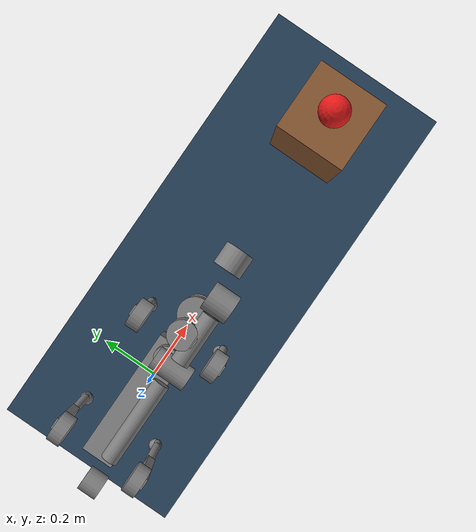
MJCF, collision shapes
<mujoco model="go2_d1_d1mesh scene">
  <include file="go2_d1_d1mesh.xml"/>

  <statistic center="0 0 0.1" extent="0.8"/>

  <visual>
    <headlight diffuse="0.6 0.6 0.6" ambient="0.3 0.3 0.3" specular="0 0 0"/>
    <rgba haze="0.15 0.25 0.35 1"/>
    <global azimuth="-130" elevation="-20"/>
  </visual>

  <asset>
    <texture type="skybox" builtin="gradient" rgb1="0.3 0.5 0.7" rgb2="0 0 0" width="512" height="3072"/>
    <texture type="2d" name="groundplane" builtin="checker" mark="edge" rgb1="0.2 0.3 0.4" rgb2="0.1 0.2 0.3"
      markrgb="0.8 0.8 0.8" width="300" height="300"/>
    <material name="groundplane" texture="groundplane" texuniform="true" texrepeat="5 5" reflectance="0.2"/>
    <material name="red" rgba="0.9 0.1 0.1 1" reflectance="0.3"/>
  </asset>

  <worldbody>
    <light pos="0 0 1.5" dir="0 0 -1" directional="true"/>
    <geom name="floor" size="0 0 0.05" type="plane" material="groundplane"/>
    <body name="table" pos="1.0 0 0.15">
      <geom name="table_top" type="box" size="0.12 0.12 0.15" rgba="0.55 0.35 0.2 1" condim="3"/>
    </body>
    <body name="red_ball" pos="1.0 0 0.355">
      <freejoint/>
      <geom name="ball" type="sphere" size="0.05" mass="0.05" material="red"
        friction="1.0 0.02 0.01" condim="3"/>
    </body>
  </worldbody>
</mujoco>

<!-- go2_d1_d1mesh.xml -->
<mujoco model="go2_d1_d1mesh">
  <compiler angle="radian" meshdir="assets" autolimits="true" />

  <option cone="elliptic" impratio="10" integrator="implicitfast" timestep="0.002" />

  <default>
    <default class="go2">
      <geom friction="0.4" margin="0.001" condim="1"/>
      <joint axis="0 1 0" damping="2" armature="0.05" frictionloss="0.2"/>
      <motor ctrlrange="-23.7 23.7"/>
      <default class="abduction">
        <joint axis="1 0 0" range="-1.0472 1.0472"/>
      </default>
      <default class="hip">
        <default class="front_hip">
          <joint range="-1.5708 3.4907"/>
        </default>
        <default class="back_hip">
          <joint range="-0.5236 4.5379"/>
        </default>
      </default>
      <default class="knee">
        <joint range="-2.7227 -0.83776"/>
        <motor ctrlrange="-45.43 45.43"/>
      </default>
      <default class="visual">
        <geom type="mesh" contype="0" conaffinity="0" group="2"/>
      </default>
      <default class="collision">
        <geom group="3"/>
        <default class="foot">
          <geom size="0.022" pos="-0.002 0 -0.213" priority="1" condim="6"
            friction="0.55 0.025 0.012"/>
        </default>
      </default>
    </default>

    <default class="d1">
      <joint damping="1" frictionloss="1"/>
      <general biastype="affine" gainprm="1000" biasprm="0 -1000 -100" forcerange="-30 30"/>
      <default class="d1_visual">
        <geom type="mesh" group="2" contype="0" conaffinity="0"/>
      </default>
      <default class="d1_collision">
        <geom type="cylinder" group="3" mass="0" density="0"/>
      </default>
    </default>
  </default>

  <asset>
    <material name="metal" rgba=".9 .95 .95 1" />
    <material name="black" rgba="0 0 0 1" />
    <material name="white" rgba="1 1 1 1" />
    <material name="gray" rgba="0.671705 0.692426 0.774270 1" />

    <mesh file="base_0.obj" />
    <mesh file="base_1.obj" />
    <mesh file="base_2.obj" />
    <mesh file="base_3.obj" />
    <mesh file="base_4.obj" />
    <mesh file="hip_0.obj" />
    <mesh file="hip_1.obj" />
    <mesh file="thigh_0.obj" />
    <mesh file="thigh_1.obj" />
    <mesh file="thigh_mirror_0.obj" />
    <mesh file="thigh_mirror_1.obj" />
    <mesh file="calf_0.obj" />
    <mesh file="calf_1.obj" />
    <mesh file="calf_mirror_0.obj" />
    <mesh file="calf_mirror_1.obj" />
    <mesh file="foot.obj" />

    <mesh name="d1_base_link" file="/home/lab/Documents/Unitree_Simulator/d1_550_description/meshes/base_link.STL" />
    <mesh name="d1_Empty_Link1" file="/home/lab/Documents/Unitree_Simulator/d1_550_description/meshes/Empty_Link1.STL" />
    <mesh name="d1_Empty_Link2" file="/home/lab/Documents/Unitree_Simulator/d1_550_description/meshes/Empty_Link2.STL" />
    <mesh name="d1_Empty_Link3" file="/home/lab/Documents/Unitree_Simulator/d1_550_description/meshes/Empty_Link3.STL" />
    <mesh name="d1_Empty_Link4" file="/home/lab/Documents/Unitree_Simulator/d1_550_description/meshes/Empty_Link4.STL" />
    <mesh name="d1_Empty_Link5" file="/home/lab/Documents/Unitree_Simulator/d1_550_description/meshes/Empty_Link5.STL" />
    <mesh name="d1_Empty_Link6" file="/home/lab/Documents/Unitree_Simulator/d1_550_description/meshes/Empty_Link6.STL" />
  </asset>

  <worldbody>
    <body name="base_link" pos="0 0 0.445" childclass="go2">
      <!-- COM torso: ~15 mm indietro (−x), allineato a go2_d1.xml -->
      <inertial pos="0.006112 0 -0.005366" quat="-0.000543471 0.713435 -0.00173769 0.700719"
        mass="6.921"
        diaginertia="0.107027 0.0980771 0.0244531" />
      <freejoint />
      <geom mesh="base_0" material="black" class="visual" />
      <geom mesh="base_1" material="black" class="visual" />
      <geom mesh="base_2" material="black" class="visual" />
      <geom mesh="base_3" material="white" class="visual" />
      <geom mesh="base_4" material="gray" class="visual" />
      <geom size="0.1881 0.04675 0.057" type="box" class="collision" />
      <geom size="0.05 0.045" pos="0.285 0 0.01" type="cylinder" class="collision" />
      <geom size="0.047" pos="0.293 0 -0.06" class="collision" />
      <site name="imu" pos="-0.02557 0 0.04232" />
      <!-- Camera per depth/SLAM (da fork lupinjia/unitree_mujoco) -->
      <camera name="depth_camera" pos="0.315 0 0.09" euler="0 -0.78539816339 0" mode="fixed" fovy="72"/>
      <body name="FL_hip" pos="0.1934 0.0465 0">
        <inertial pos="-0.0054 0.00194 -0.000105" quat="0.497014 0.499245 0.505462 0.498237"
          mass="0.678"
          diaginertia="0.00088403 0.000596003 0.000479967" />
        <joint name="FL_hip_joint" class="abduction" />
        <geom mesh="hip_0" material="metal" class="visual" />
        <geom mesh="hip_1" material="gray" class="visual" />
        <geom size="0.046 0.02" pos="0 0.08 0" quat="1 1 0 0" type="cylinder" class="collision" />
        <body name="FL_thigh" pos="0 0.0955 0">
          <inertial pos="-0.00374 -0.0223 -0.0327" quat="0.829533 0.0847635 -0.0200632 0.551623"
            mass="1.152"
            diaginertia="0.00594973 0.00584149 0.000878787" />
          <joint name="FL_thigh_joint" class="front_hip" />
          <geom mesh="thigh_0" material="metal" class="visual" />
          <geom mesh="thigh_1" material="gray" class="visual" />
          <geom size="0.1065 0.01225 0.017" pos="0 0 -0.1065" quat="0.707107 0 0.707107 0"
            type="box" class="collision" />
          <body name="FL_calf" pos="0 0 -0.213">
            <inertial pos="0.00629595 -0.000622121 -0.141417"
              quat="0.710672 0.00154099 -0.00450087 0.703508"
              mass="0.241352" diaginertia="0.0014901 0.00146356 5.31397e-05" />
            <joint name="FL_calf_joint" class="knee" />
            <geom mesh="calf_0" material="gray" class="visual" />
            <geom mesh="calf_1" material="black" class="visual" />
            <geom size="0.012 0.06" pos="0.008 0 -0.06" quat="0.994493 0 -0.104807 0"
              type="cylinder" class="collision" />
            <geom size="0.011 0.0325" pos="0.02 0 -0.148" quat="0.999688 0 0.0249974 0"
              type="cylinder" class="collision" />
            <geom pos="0 0 -0.213" mesh="foot" class="visual" material="black" />
            <geom name="FL" class="foot" />
            <body name="FL_foot" pos="0 0 -0.213" />
          </body>
        </body>
      </body>
      <body name="FR_hip" pos="0.1934 -0.0465 0">
        <inertial pos="-0.0054 -0.00194 -0.000105" quat="0.498237 0.505462 0.499245 0.497014"
          mass="0.678"
          diaginertia="0.00088403 0.000596003 0.000479967" />
        <joint name="FR_hip_joint" class="abduction" />
        <geom mesh="hip_0" material="metal" class="visual" quat="4.63268e-05 1 0 0" />
        <geom mesh="hip_1" material="gray" class="visual" quat="4.63268e-05 1 0 0" />
        <geom size="0.046 0.02" pos="0 -0.08 0" quat="0.707107 0.707107 0 0" type="cylinder"
          class="collision" />
        <body name="FR_thigh" pos="0 -0.0955 0">
          <inertial pos="-0.00374 0.0223 -0.0327" quat="0.551623 -0.0200632 0.0847635 0.829533"
            mass="1.152"
            diaginertia="0.00594973 0.00584149 0.000878787" />
          <joint name="FR_thigh_joint" class="front_hip" />
          <geom mesh="thigh_mirror_0" material="metal" class="visual" />
          <geom mesh="thigh_mirror_1" material="gray" class="visual" />
          <geom size="0.1065 0.01225 0.017" pos="0 0 -0.1065" quat="0.707107 0 0.707107 0"
            type="box" class="collision" />
          <body name="FR_calf" pos="0 0 -0.213">
            <inertial pos="0.00629595 0.000622121 -0.141417"
              quat="0.703508 -0.00450087 0.00154099 0.710672"
              mass="0.241352" diaginertia="0.0014901 0.00146356 5.31397e-05" />
            <joint name="FR_calf_joint" class="knee" />
            <geom mesh="calf_mirror_0" material="gray" class="visual" />
            <geom mesh="calf_mirror_1" material="black" class="visual" />
            <geom size="0.013 0.06" pos="0.01 0 -0.06" quat="0.995004 0 -0.0998334 0"
              type="cylinder" class="collision" />
            <geom size="0.011 0.0325" pos="0.02 0 -0.148" quat="0.999688 0 0.0249974 0"
              type="cylinder" class="collision" />
            <geom pos="0 0 -0.213" mesh="foot" class="visual" material="black" />
            <geom name="FR" class="foot" />
            <body name="FR_foot" pos="0 0 -0.213" />
          </body>
        </body>
      </body>
      <body name="RL_hip" pos="-0.1934 0.0465 0">
        <inertial pos="0.0054 0.00194 -0.000105" quat="0.505462 0.498237 0.497014 0.499245"
          mass="0.678"
          diaginertia="0.00088403 0.000596003 0.000479967" />
        <joint name="RL_hip_joint" class="abduction" />
        <geom mesh="hip_0" material="metal" class="visual" quat="4.63268e-05 0 1 0" />
        <geom mesh="hip_1" material="gray" class="visual" quat="4.63268e-05 0 1 0" />
        <geom size="0.046 0.02" pos="0 0.08 0" quat="0.707107 0.707107 0 0" type="cylinder"
          class="collision" />
        <body name="RL_thigh" pos="0 0.0955 0">
          <inertial pos="-0.00374 -0.0223 -0.0327" quat="0.829533 0.0847635 -0.0200632 0.551623"
            mass="1.152"
            diaginertia="0.00594973 0.00584149 0.000878787" />
          <joint name="RL_thigh_joint" class="back_hip" />
          <geom mesh="thigh_0" material="metal" class="visual" />
          <geom mesh="thigh_1" material="gray" class="visual" />
          <geom size="0.1065 0.01225 0.017" pos="0 0 -0.1065" quat="0.707107 0 0.707107 0"
            type="box" class="collision" />
          <body name="RL_calf" pos="0 0 -0.213">
            <inertial pos="0.00629595 -0.000622121 -0.141417"
              quat="0.710672 0.00154099 -0.00450087 0.703508"
              mass="0.241352" diaginertia="0.0014901 0.00146356 5.31397e-05" />
            <joint name="RL_calf_joint" class="knee" />
            <geom mesh="calf_0" material="gray" class="visual" />
            <geom mesh="calf_1" material="black" class="visual" />
            <geom size="0.013 0.06" pos="0.01 0 -0.06" quat="0.995004 0 -0.0998334 0"
              type="cylinder" class="collision" />
            <geom size="0.011 0.0325" pos="0.02 0 -0.148" quat="0.999688 0 0.0249974 0"
              type="cylinder" class="collision" />
            <geom pos="0 0 -0.213" mesh="foot" class="visual" material="black" />
            <geom name="RL" class="foot" />
            <body name="RL_foot" pos="0 0 -0.213" />
          </body>
        </body>
      </body>
      <body name="RR_hip" pos="-0.1934 -0.0465 0">
        <inertial pos="0.0054 -0.00194 -0.000105" quat="0.499245 0.497014 0.498237 0.505462"
          mass="0.678"
          diaginertia="0.00088403 0.000596003 0.000479967" />
        <joint name="RR_hip_joint" class="abduction" />
        <geom mesh="hip_0" material="metal" class="visual"
          quat="2.14617e-09 4.63268e-05 4.63268e-05 -1" />
        <geom mesh="hip_1" material="gray" class="visual"
          quat="2.14617e-09 4.63268e-05 4.63268e-05 -1" />
        <geom size="0.046 0.02" pos="0 -0.08 0" quat="0.707107 0.707107 0 0" type="cylinder"
          class="collision" />
        <body name="RR_thigh" pos="0 -0.0955 0">
          <inertial pos="-0.00374 0.0223 -0.0327" quat="0.551623 -0.0200632 0.0847635 0.829533"
            mass="1.152"
            diaginertia="0.00594973 0.00584149 0.000878787" />
          <joint name="RR_thigh_joint" class="back_hip" />
          <geom mesh="thigh_mirror_0" material="metal" class="visual" />
          <geom mesh="thigh_mirror_1" material="gray" class="visual" />
          <geom size="0.1065 0.01225 0.017" pos="0 0 -0.1065" quat="0.707107 0 0.707107 0"
            type="box" class="collision" />
          <body name="RR_calf" pos="0 0 -0.213">
            <inertial pos="0.00629595 0.000622121 -0.141417"
              quat="0.703508 -0.00450087 0.00154099 0.710672"
              mass="0.241352" diaginertia="0.0014901 0.00146356 5.31397e-05" />
            <joint name="RR_calf_joint" class="knee" />
            <geom mesh="calf_mirror_0" material="gray" class="visual" />
            <geom mesh="calf_mirror_1" material="black" class="visual" />
            <geom size="0.013 0.06" pos="0.01 0 -0.06" quat="0.995004 0 -0.0998334 0"
              type="cylinder" class="collision" />
            <geom size="0.011 0.0325" pos="0.02 0 -0.148" quat="0.999688 0 0.0249974 0"
              type="cylinder" class="collision" />
            <geom pos="0 0 -0.213" mesh="foot" class="visual" material="black" />
            <geom name="RR" class="foot" />
            <body name="RR_foot" pos="0 0 -0.213" />
          </body>
        </body>
      </body>
      <!-- Braccio Unitree D1 (mesh d1_550); limiti giunti 0–5 da datasheet (°→rad). Pinza (joint 6 datasheet) non è DoF separato qui. -->
      <!-- Inerzie/masse D1 allineate a d1_550_description/urdf/d1_550_description.urdf (link base + Empty_Link*) -->
      <body name="arm_link00" pos="0.15 0 0.06" childclass="d1">
        <inertial pos="-0.00334984 -0.00013615 0.0249584" quat="-0.00692194 0.682592 0.00133293 0.730766" mass="0.16964"
          diaginertia="0.0001908 0.0001490 0.0001360"/>
        <geom class="d1_visual" mesh="d1_base_link"/>
        <geom size="0.0325 0.0255" pos="0 0 0.0255" class="d1_collision"/>
        <body name="arm_link01" pos="0 0 0.0738">
          <inertial pos="2.47e-06 -0.00025198 0.0231717" quat="0.708578 0.705633 0.000281462 -0.000355927" mass="0.14706"
            diaginertia="0.0002804 0.0001833 0.0001571"/>
          <joint name="arm_joint1" axis="0 0 -1" range="-2.35619 2.35619"/>
          <geom class="d1_visual" mesh="d1_Empty_Link1"/>
          <body name="arm_link02" pos="0 -0.0276 0.0578">
            <inertial pos="-0.110126 0.00240029 0.00158266" quat="0.00748058 0.707092 -0.0114473 0.70699" mass="0.20987"
              diaginertia="0.004343 0.004282 0.0001768"/>
            <joint name="arm_joint2" axis="0 1 0" range="-1.5708 1.5708" damping="2"/>
            <geom class="d1_visual" mesh="d1_Empty_Link2"/>
            <geom size="0.0325 0.051" quat="1 1 0 0" class="d1_collision"/>
            <geom size="0.0225 0.1175" pos="-0.1625 0 0" quat="1 0 1 0" class="d1_collision"/>
            <geom size="0.0325 0.0255" pos="-0.35 0 0" quat="1 1 0 0" class="d1_collision"/>
            <body name="arm_link03" pos="0 -0.0004 0.27">
              <inertial pos="0.106092 -0.00541815 0.0347638" quat="0.540557 0.443575 0.426319 0.573839" mass="0.064921"
                diaginertia="0.0007380 0.0007259 0.0000432"/>
              <joint name="arm_joint3" axis="0 1 0" range="-1.5708 1.5708"/>
              <geom class="d1_visual" mesh="d1_Empty_Link3"/>
              <geom size="0.02 0.058" pos="0.128 0 0.055" quat="1 0 1 0" class="d1_collision"/>
              <geom size="0.0325 0.0295" pos="0.2205 0 0.055" quat="0.5 -0.5 0.5 0.5" class="d1_collision"/>
              <body name="arm_link04" pos="0.05 0.0275 0.041325">
                <inertial pos="0.0436668 0.00364738 -0.00170192" quat="0.0390835 0.726445 -0.0526787 0.684087"
                  mass="0.081362" diaginertia="0.0001416 0.0001358 0.0000437"/>
                <joint name="arm_joint4" axis="1 0 0" range="-2.35619 2.35619"/>
                <geom class="d1_visual" mesh="d1_Empty_Link4"/>
                <geom size="0.0325 0.0335" pos="0.072 0 0" class="d1_collision"/>
                <body name="arm_link05" pos="0.15468 -0.0258 0.0001">
                  <inertial pos="0.0312153 0 0.00646316" quat="0.462205 0.535209 0.53785 0.45895" mass="0.059846"
                    diaginertia="0.0000859 0.0000842 0.0000257"/>
                  <joint name="arm_joint5" axis="0 1 0" range="-1.5708 1.5708"/>
                  <geom class="d1_visual" mesh="d1_Empty_Link5"/>
                  <body name="arm_link06" pos="0.0777 0.025822 -0.0010718">
                    <inertial pos="0.0241569 -0.00017355 -0.00143876" quat="0.998779 0.0457735 -0.00663717 0.0173548"
                      mass="0.12117" diaginertia="0.0000770 0.0000620 0.0000616"/>
                    <!-- J5 ±135° (ultimo DoF cinematico prima pinza; pinza datasheet non modellata) -->
                    <joint name="arm_joint6" axis="1 0 0" range="-2.35619 2.35619"/>
                    <geom class="d1_visual" mesh="d1_Empty_Link6"/>
                    <geom size="0.0325 0.0255" pos="0.0255 0 0" quat="1 0 1 0" class="d1_collision"/>
                    <camera name="wrist_camera" pos="0.1 0 0" euler="0 -0.78539816339 -1.5708" fovy="90" mode="fixed"/>
                  </body>
                </body>
              </body>
            </body>
          </body>
        </body>
      </body>

    </body>
  </worldbody>

  <actuator>
    <motor class="abduction" name="FR_hip" joint="FR_hip_joint" />
    <motor class="hip" name="FR_thigh" joint="FR_thigh_joint" />
    <motor class="knee" name="FR_calf" joint="FR_calf_joint" />
    <motor class="abduction" name="FL_hip" joint="FL_hip_joint" />
    <motor class="hip" name="FL_thigh" joint="FL_thigh_joint" />
    <motor class="knee" name="FL_calf" joint="FL_calf_joint" />
    <motor class="abduction" name="RR_hip" joint="RR_hip_joint" />
    <motor class="hip" name="RR_thigh" joint="RR_thigh_joint" />
    <motor class="knee" name="RR_calf" joint="RR_calf_joint" />
    <motor class="abduction" name="RL_hip" joint="RL_hip_joint" />
    <motor class="hip" name="RL_thigh" joint="RL_thigh_joint" />
    <motor class="knee" name="RL_calf" joint="RL_calf_joint" />

    <general class="d1" name="arm_motor1" joint="arm_joint1" ctrlrange="-2.35619 2.35619"/>
   <general class="d1" name="arm_motor2" joint="arm_joint2" ctrlrange="-1.5708 1.5708" />
    <general class="d1" name="arm_motor3" joint="arm_joint3" ctrlrange="-1.5708 1.5708"/>
    <general class="d1" name="arm_motor4" joint="arm_joint4" ctrlrange="-2.35619 2.35619"/>
    <general class="d1" name="arm_motor5" joint="arm_joint5" ctrlrange="-1.5708 1.5708"/>
    <general class="d1" name="arm_motor6" joint="arm_joint6" ctrlrange="-2.35619 2.35619"/>
  </actuator>

  <sensor>
    <jointpos name="FR_hip_pos" joint="FR_hip_joint" />
    <jointpos name="FR_thigh_pos" joint="FR_thigh_joint" />
    <jointpos name="FR_calf_pos" joint="FR_calf_joint" />
    <jointpos name="FL_hip_pos" joint="FL_hip_joint" />
    <jointpos name="FL_thigh_pos" joint="FL_thigh_joint" />
    <jointpos name="FL_calf_pos" joint="FL_calf_joint" />
    <jointpos name="RR_hip_pos" joint="RR_hip_joint" />
    <jointpos name="RR_thigh_pos" joint="RR_thigh_joint" />
    <jointpos name="RR_calf_pos" joint="RR_calf_joint" />
    <jointpos name="RL_hip_pos" joint="RL_hip_joint" />
    <jointpos name="RL_thigh_pos" joint="RL_thigh_joint" />
    <jointpos name="RL_calf_pos" joint="RL_calf_joint" />
    <jointpos name="arm_joint1_pos" joint="arm_joint1" />
    <jointpos name="arm_joint2_pos" joint="arm_joint2" />
    <jointpos name="arm_joint3_pos" joint="arm_joint3" />
    <jointpos name="arm_joint4_pos" joint="arm_joint4" />
    <jointpos name="arm_joint5_pos" joint="arm_joint5" />
    <jointpos name="arm_joint6_pos" joint="arm_joint6" />

    <jointvel name="FR_hip_vel" joint="FR_hip_joint" />
    <jointvel name="FR_thigh_vel" joint="FR_thigh_joint" />
    <jointvel name="FR_calf_vel" joint="FR_calf_joint" />
    <jointvel name="FL_hip_vel" joint="FL_hip_joint" />
    <jointvel name="FL_thigh_vel" joint="FL_thigh_joint" />
    <jointvel name="FL_calf_vel" joint="FL_calf_joint" />
    <jointvel name="RR_hip_vel" joint="RR_hip_joint" />
    <jointvel name="RR_thigh_vel" joint="RR_thigh_joint" />
    <jointvel name="RR_calf_vel" joint="RR_calf_joint" />
    <jointvel name="RL_hip_vel" joint="RL_hip_joint" />
    <jointvel name="RL_thigh_vel" joint="RL_thigh_joint" />
    <jointvel name="RL_calf_vel" joint="RL_calf_joint" />
    <jointvel name="arm_joint1_vel" joint="arm_joint1" />
    <jointvel name="arm_joint2_vel" joint="arm_joint2" />
    <jointvel name="arm_joint3_vel" joint="arm_joint3" />
    <jointvel name="arm_joint4_vel" joint="arm_joint4" />
    <jointvel name="arm_joint5_vel" joint="arm_joint5" />
    <jointvel name="arm_joint6_vel" joint="arm_joint6" />
    <jointactuatorfrc name="FR_hip_torque" joint="FR_hip_joint" noise="0.01" />
    <jointactuatorfrc name="FR_thigh_torque" joint="FR_thigh_joint" noise="0.01" />
    <jointactuatorfrc name="FR_calf_torque" joint="FR_calf_joint" noise="0.01" />
    <jointactuatorfrc name="FL_hip_torque" joint="FL_hip_joint" noise="0.01" />
    <jointactuatorfrc name="FL_thigh_torque" joint="FL_thigh_joint" noise="0.01" />
    <jointactuatorfrc name="FL_calf_torque" joint="FL_calf_joint" noise="0.01" />
    <jointactuatorfrc name="RR_hip_torque" joint="RR_hip_joint" noise="0.01" />
    <jointactuatorfrc name="RR_thigh_torque" joint="RR_thigh_joint" noise="0.01" />
    <jointactuatorfrc name="RR_calf_torque" joint="RR_calf_joint" noise="0.01" />
    <jointactuatorfrc name="RL_hip_torque" joint="RL_hip_joint" noise="0.01" />
    <jointactuatorfrc name="RL_thigh_torque" joint="RL_thigh_joint" noise="0.01" />
    <jointactuatorfrc name="RL_calf_torque" joint="RL_calf_joint" noise="0.01" />
    <jointactuatorfrc name="arm_joint1_torque" joint="arm_joint1" noise="0.01" />
    <jointactuatorfrc name="arm_joint2_torque" joint="arm_joint2" noise="0.01" />
    <jointactuatorfrc name="arm_joint3_torque" joint="arm_joint3" noise="0.01" />
    <jointactuatorfrc name="arm_joint4_torque" joint="arm_joint4" noise="0.01" />
    <jointactuatorfrc name="arm_joint5_torque" joint="arm_joint5" noise="0.01" />
    <jointactuatorfrc name="arm_joint6_torque" joint="arm_joint6" noise="0.01" />

    <framequat name="imu_quat" objtype="site" objname="imu" />
    <gyro name="imu_gyro" site="imu" />
    <accelerometer name="imu_acc" site="imu" />

    <framepos name="frame_pos" objtype="site" objname="imu" />
    <framelinvel name="frame_vel" objtype="site" objname="imu" />
  </sensor>

  <keyframe>
    <!-- home: qpos = base freejoint(7) | Go2 gambe(12) | D1 braccio(6); ctrl = 12+6 attuatori -->
    <key
      name="home"
      qpos="
        0 0 0.27 1 0 0 0
        0.006 0.82 -1.50 -0.006 0.82 -1.50 0.006 1.08 -1.82 -0.006 1.08 -1.82
        -0.0 -1.5 1.0 0.22 0 0
      "
      ctrl="
        0.006 0.82 -1.50 -0.006 0.82 -1.50 0.006 1.08 -1.82 -0.006 1.08 -1.82
        -0.0 -1.5 1.0 0.22 0 0
      "
    />
  </keyframe>
</mujoco>
